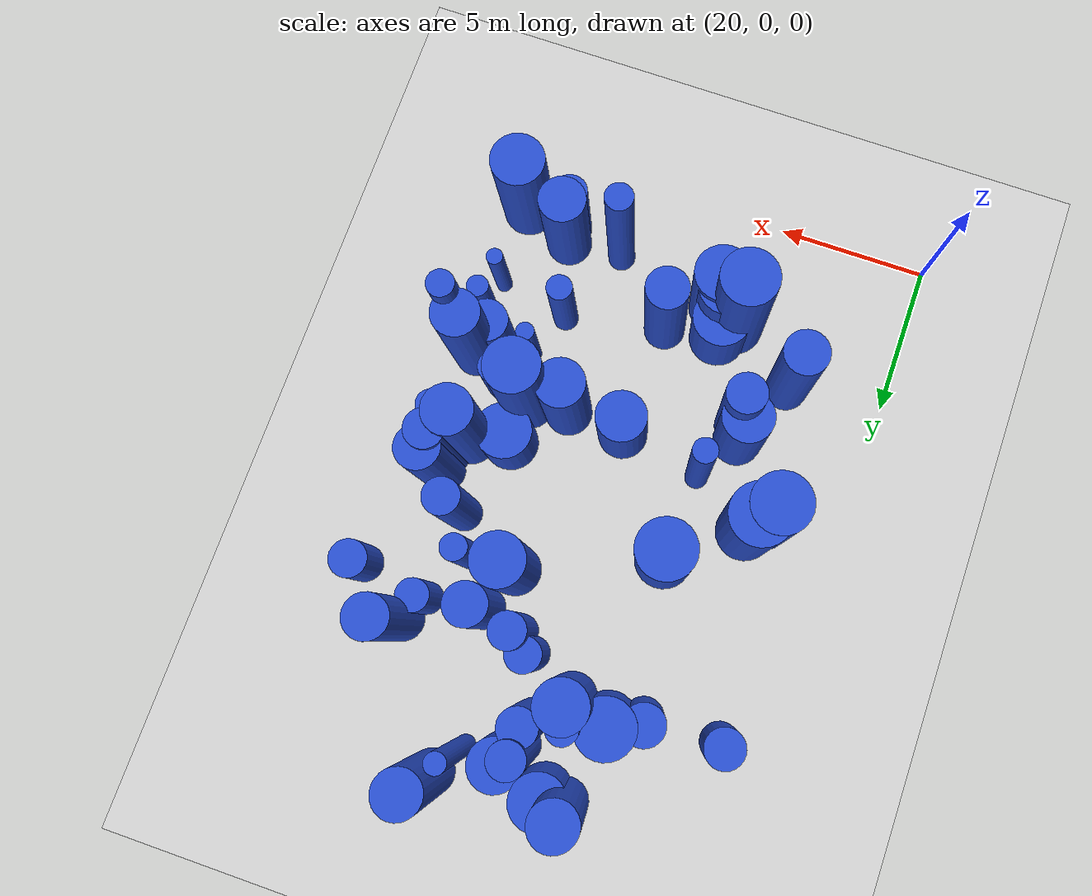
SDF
<sdf version="1.6">
 <world name="default">
  <model name="ground_plane">
   <static>1</static>
   <link name="link">
    <collision name="collision">
     <geometry><plane><normal>0 0 1</normal><size>100 100</size></plane></geometry>
     <surface><friction><ode><mu>100</mu><mu2>50</mu2></ode></friction></surface>
    </collision>
    <visual name="visual">
     <cast_shadows>0</cast_shadows>
     <geometry><plane><normal>0 0 1</normal><size>100 100</size></plane></geometry>
     <material>
      <script><uri>file://media/materials/scripts/gazebo.material</uri><name>Gazebo/Grey</name></script>
     </material>
    </visual>
   </link>
  </model>
  <model name="4">
   <static>0</static>
   <link name="link">
    <inertial>
     <mass>2</mass>
     <inertia><ixx>2.85473</ixx><ixy>0</ixy><ixz>0</ixz><iyy>2.85473</iyy><iyz>0</iyz><izz>0.620901</izz></inertia>
    </inertial>
    <collision name="collision">
     <geometry><cylinder><length>3.90714</length><radius>0.787973</radius></cylinder></geometry>
     <surface><contact><collide_without_contact>1</collide_without_contact></contact></surface>
    </collision>
    <visual name="visual">
     <geometry><cylinder><length>3.90714</length><radius>0.787973</radius></cylinder></geometry>
     <material>
      <script><uri>file://media/materials/scripts/gazebo.material</uri><name>Gazebo/Blue</name></script>
     </material>
    </visual>
    <gravity>0</gravity>
   </link>
   <pose>29.9206 8.51372 1.95357 0 -0 0</pose>
  </model>
  <model name="35">
   <static>0</static>
   <link name="link">
    <inertial>
     <mass>2</mass>
     <inertia><ixx>1.28734</ixx><ixy>0</ixy><ixz>0</ixz><iyy>1.28734</iyy><iyz>0</iyz><izz>0.926556</izz></inertia>
    </inertial>
    <collision name="collision">
     <geometry><cylinder><length>2.22359</length><radius>0.962578</radius></cylinder></geometry>
     <surface><contact><collide_without_contact>1</collide_without_contact></contact></surface>
    </collision>
    <visual name="visual">
     <geometry><cylinder><length>2.22359</length><radius>0.962578</radius></cylinder></geometry>
     <material>
      <script><uri>file://media/materials/scripts/gazebo.material</uri><name>Gazebo/Blue</name></script>
     </material>
    </visual>
    <gravity>0</gravity>
   </link>
   <pose>25.9919 4.41635 1.11179 0 -0 0</pose>
  </model>
  <model name="54">
   <static>0</static>
   <link name="link">
    <inertial>
     <mass>2</mass>
     <inertia><ixx>1.57607</ixx><ixy>0</ixy><ixz>0</ixz><iyy>1.57607</iyy><iyz>0</iyz><izz>0.179412</izz></inertia>
    </inertial>
    <collision name="collision">
     <geometry><cylinder><length>2.98633</length><radius>0.423571</radius></cylinder></geometry>
     <surface><contact><collide_without_contact>1</collide_without_contact></contact></surface>
    </collision>
    <visual name="visual">
     <geometry><cylinder><length>2.98633</length><radius>0.423571</radius></cylinder></geometry>
     <material>
      <script><uri>file://media/materials/scripts/gazebo.material</uri><name>Gazebo/Blue</name></script>
     </material>
    </visual>
    <gravity>0</gravity>
   </link>
   <pose>31.1213 5.4114 1.49317 0 -0 0</pose>
  </model>
  <model name="72">
   <static>0</static>
   <link name="link">
    <inertial>
     <mass>2</mass>
     <inertia><ixx>3.37373</ixx><ixy>0</ixy><ixz>0</ixz><iyy>3.37373</iyy><iyz>0</iyz><izz>0.599551</izz></inertia>
    </inertial>
    <collision name="collision">
     <geometry><cylinder><length>4.29461</length><radius>0.774307</radius></cylinder></geometry>
     <surface><contact><collide_without_contact>1</collide_without_contact></contact></surface>
    </collision>
    <visual name="visual">
     <geometry><cylinder><length>4.29461</length><radius>0.774307</radius></cylinder></geometry>
     <material>
      <script><uri>file://media/materials/scripts/gazebo.material</uri><name>Gazebo/Blue</name></script>
     </material>
    </visual>
    <gravity>0</gravity>
   </link>
   <pose>33.5461 7.57259 2.14731 0 -0 0</pose>
  </model>
  <model name="78">
   <static>0</static>
   <link name="link">
    <inertial>
     <mass>2</mass>
     <inertia><ixx>2.13726</ixx><ixy>0</ixy><ixz>0</ixz><iyy>2.13726</iyy><iyz>0</iyz><izz>0.219295</izz></inertia>
    </inertial>
    <collision name="collision">
     <geometry><cylinder><length>3.48793</length><radius>0.46829</radius></cylinder></geometry>
     <surface><contact><collide_without_contact>1</collide_without_contact></contact></surface>
    </collision>
    <visual name="visual">
     <geometry><cylinder><length>3.48793</length><radius>0.46829</radius></cylinder></geometry>
     <material>
      <script><uri>file://media/materials/scripts/gazebo.material</uri><name>Gazebo/Blue</name></script>
     </material>
    </visual>
    <gravity>0</gravity>
   </link>
   <pose>33.4722 10.2994 1.74397 0 -0 0</pose>
  </model>
  <model name="85">
   <static>0</static>
   <link name="link">
    <inertial>
     <mass>2</mass>
     <inertia>
      <ixx>1.04976</ixx>
      <ixy>0</ixy>
      <ixz>0</ixz>
      <iyy>1.04976</iyy>
      <iyz>0</iyz>
      <izz>0.0926647</izz>
     </inertia>
    </inertial>
    <collision name="collision">
     <geometry><cylinder><length>2.45369</length><radius>0.304409</radius></cylinder></geometry>
     <surface><contact><collide_without_contact>1</collide_without_contact></contact></surface>
    </collision>
    <visual name="visual">
     <geometry><cylinder><length>2.45369</length><radius>0.304409</radius></cylinder></geometry>
     <material>
      <script><uri>file://media/materials/scripts/gazebo.material</uri><name>Gazebo/Blue</name></script>
     </material>
    </visual>
    <gravity>0</gravity>
   </link>
   <pose>31.7715 6.96102 1.22685 0 -0 0</pose>
  </model>
  <model name="97">
   <static>0</static>
   <link name="link">
    <inertial>
     <mass>2</mass>
     <inertia><ixx>1.02493</ixx><ixy>0</ixy><ixz>0</ixz><iyy>1.02493</iyy><iyz>0</iyz><izz>0.288554</izz></inertia>
    </inertial>
    <collision name="collision">
     <geometry><cylinder><length>2.29868</length><radius>0.537172</radius></cylinder></geometry>
     <surface><contact><collide_without_contact>1</collide_without_contact></contact></surface>
    </collision>
    <visual name="visual">
     <geometry><cylinder><length>2.29868</length><radius>0.537172</radius></cylinder></geometry>
     <material>
      <script><uri>file://media/materials/scripts/gazebo.material</uri><name>Gazebo/Blue</name></script>
     </material>
    </visual>
    <gravity>0</gravity>
   </link>
   <pose>32.2275 15.8811 1.14934 0 -0 0</pose>
  </model>
  <model name="109">
   <static>0</static>
   <link name="link">
    <inertial>
     <mass>2</mass>
     <inertia><ixx>1.3731</ixx><ixy>0</ixy><ixz>0</ixz><iyy>1.3731</iyy><iyz>0</iyz><izz>0.503151</izz></inertia>
    </inertial>
    <collision name="collision">
     <geometry><cylinder><length>2.59406</length><radius>0.709332</radius></cylinder></geometry>
     <surface><contact><collide_without_contact>1</collide_without_contact></contact></surface>
    </collision>
    <visual name="visual">
     <geometry><cylinder><length>2.59406</length><radius>0.709332</radius></cylinder></geometry>
     <material>
      <script><uri>file://media/materials/scripts/gazebo.material</uri><name>Gazebo/Blue</name></script>
     </material>
    </visual>
    <gravity>0</gravity>
   </link>
   <pose>33.0318 7.0477 1.29703 0 -0 0</pose>
  </model>
  <model name="119">
   <static>0</static>
   <link name="link">
    <inertial>
     <mass>2</mass>
     <inertia><ixx>1.0452</ixx><ixy>0</ixy><ixz>0</ixz><iyy>1.0452</iyy><iyz>0</iyz><izz>0.0754433</izz></inertia>
    </inertial>
    <collision name="collision">
     <geometry><cylinder><length>2.45863</length><radius>0.274669</radius></cylinder></geometry>
     <surface><contact><collide_without_contact>1</collide_without_contact></contact></surface>
    </collision>
    <visual name="visual">
     <geometry><cylinder><length>2.45863</length><radius>0.274669</radius></cylinder></geometry>
     <material>
      <script><uri>file://media/materials/scripts/gazebo.material</uri><name>Gazebo/Blue</name></script>
     </material>
    </visual>
    <gravity>0</gravity>
   </link>
   <pose>33.5432 4.92379 1.22931 0 -0 0</pose>
  </model>
  <model name="124">
   <static>0</static>
   <link name="link">
    <inertial>
     <mass>2</mass>
     <inertia><ixx>3.6875</ixx><ixy>0</ixy><ixz>0</ixz><iyy>3.6875</iyy><iyz>0</iyz><izz>0.151865</izz></inertia>
    </inertial>
    <collision name="collision">
     <geometry><cylinder><length>4.65504</length><radius>0.389699</radius></cylinder></geometry>
     <surface><contact><collide_without_contact>1</collide_without_contact></contact></surface>
    </collision>
    <visual name="visual">
     <geometry><cylinder><length>4.65504</length><radius>0.389699</radius></cylinder></geometry>
     <material>
      <script><uri>file://media/materials/scripts/gazebo.material</uri><name>Gazebo/Blue</name></script>
     </material>
    </visual>
    <gravity>0</gravity>
   </link>
   <pose>25.1592 9.2284 2.32752 0 -0 0</pose>
  </model>
  <model name="132">
   <static>0</static>
   <link name="link">
    <inertial>
     <mass>2</mass>
     <inertia><ixx>3.47744</ixx><ixy>0</ixy><ixz>0</ixz><iyy>3.47744</iyy><iyz>0</iyz><izz>0.716025</izz></inertia>
    </inertial>
    <collision name="collision">
     <geometry><cylinder><length>4.32626</length><radius>0.846183</radius></cylinder></geometry>
     <surface><contact><collide_without_contact>1</collide_without_contact></contact></surface>
    </collision>
    <visual name="visual">
     <geometry><cylinder><length>4.32626</length><radius>0.846183</radius></cylinder></geometry>
     <material>
      <script><uri>file://media/materials/scripts/gazebo.material</uri><name>Gazebo/Blue</name></script>
     </material>
    </visual>
    <gravity>0</gravity>
   </link>
   <pose>29.8014 14.0881 2.16313 0 -0 0</pose>
  </model>
  <model name="134">
   <static>0</static>
   <link name="link">
    <inertial>
     <mass>2</mass>
     <inertia><ixx>3.83594</ixx><ixy>0</ixy><ixz>0</ixz><iyy>3.83594</iyy><iyz>0</iyz><izz>0.559969</izz></inertia>
    </inertial>
    <collision name="collision">
     <geometry><cylinder><length>4.61906</length><radius>0.748311</radius></cylinder></geometry>
     <surface><contact><collide_without_contact>1</collide_without_contact></contact></surface>
    </collision>
    <visual name="visual">
     <geometry><cylinder><length>4.61906</length><radius>0.748311</radius></cylinder></geometry>
     <material>
      <script><uri>file://media/materials/scripts/gazebo.material</uri><name>Gazebo/Blue</name></script>
     </material>
    </visual>
    <gravity>0</gravity>
   </link>
   <pose>30.1511 20.9742 2.30953 0 -0 0</pose>
  </model>
  <model name="137">
   <static>0</static>
   <link name="link">
    <inertial>
     <mass>2</mass>
     <inertia><ixx>3.57417</ixx><ixy>0</ixy><ixz>0</ixz><iyy>3.57417</iyy><iyz>0</iyz><izz>0.404861</izz></inertia>
    </inertial>
    <collision name="collision">
     <geometry><cylinder><length>4.49783</length><radius>0.636287</radius></cylinder></geometry>
     <surface><contact><collide_without_contact>1</collide_without_contact></contact></surface>
    </collision>
    <visual name="visual">
     <geometry><cylinder><length>4.49783</length><radius>0.636287</radius></cylinder></geometry>
     <material>
      <script><uri>file://media/materials/scripts/gazebo.material</uri><name>Gazebo/Blue</name></script>
     </material>
    </visual>
    <gravity>0</gravity>
   </link>
   <pose>24.5313 7.18181 2.24891 0 -0 0</pose>
  </model>
  <model name="146">
   <static>0</static>
   <link name="link">
    <inertial>
     <mass>2</mass>
     <inertia><ixx>4.0179</ixx><ixy>0</ixy><ixz>0</ixz><iyy>4.0179</iyy><iyz>0</iyz><izz>0.681055</izz></inertia>
    </inertial>
    <collision name="collision">
     <geometry><cylinder><length>4.69726</length><radius>0.82526</radius></cylinder></geometry>
     <surface><contact><collide_without_contact>1</collide_without_contact></contact></surface>
    </collision>
    <visual name="visual">
     <geometry><cylinder><length>4.69726</length><radius>0.82526</radius></cylinder></geometry>
     <material>
      <script><uri>file://media/materials/scripts/gazebo.material</uri><name>Gazebo/Blue</name></script>
     </material>
    </visual>
    <gravity>0</gravity>
   </link>
   <pose>26.6902 17.3442 2.34863 0 -0 0</pose>
  </model>
  <model name="148">
   <static>0</static>
   <link name="link">
    <inertial>
     <mass>2</mass>
     <inertia><ixx>4.08409</ixx><ixy>0</ixy><ixz>0</ixz><iyy>4.08409</iyy><iyz>0</iyz><izz>0.951518</izz></inertia>
    </inertial>
    <collision name="collision">
     <geometry><cylinder><length>4.65295</length><radius>0.975458</radius></cylinder></geometry>
     <surface><contact><collide_without_contact>1</collide_without_contact></contact></surface>
    </collision>
    <visual name="visual">
     <geometry><cylinder><length>4.65295</length><radius>0.975458</radius></cylinder></geometry>
     <material>
      <script><uri>file://media/materials/scripts/gazebo.material</uri><name>Gazebo/Blue</name></script>
     </material>
    </visual>
    <gravity>0</gravity>
   </link>
   <pose>23.0698 10.4532 2.32648 0 -0 0</pose>
  </model>
  <model name="155">
   <static>0</static>
   <link name="link">
    <inertial>
     <mass>2</mass>
     <inertia><ixx>2.94944</ixx><ixy>0</ixy><ixz>0</ixz><iyy>2.94944</iyy><iyz>0</iyz><izz>0.486165</izz></inertia>
    </inertial>
    <collision name="collision">
     <geometry><cylinder><length>4.02966</length><radius>0.697255</radius></cylinder></geometry>
     <surface><contact><collide_without_contact>1</collide_without_contact></contact></surface>
    </collision>
    <visual name="visual">
     <geometry><cylinder><length>4.02966</length><radius>0.697255</radius></cylinder></geometry>
     <material>
      <script><uri>file://media/materials/scripts/gazebo.material</uri><name>Gazebo/Blue</name></script>
     </material>
    </visual>
    <gravity>0</gravity>
   </link>
   <pose>27.8001 4.70758 2.01483 0 -0 0</pose>
  </model>
  <model name="158">
   <static>0</static>
   <link name="link">
    <inertial>
     <mass>2</mass>
     <inertia><ixx>4.07295</ixx><ixy>0</ixy><ixz>0</ixz><iyy>4.07295</iyy><iyz>0</iyz><izz>0.902413</izz></inertia>
    </inertial>
    <collision name="collision">
     <geometry><cylinder><length>4.66159</length><radius>0.949954</radius></cylinder></geometry>
     <surface><contact><collide_without_contact>1</collide_without_contact></contact></surface>
    </collision>
    <visual name="visual">
     <geometry><cylinder><length>4.66159</length><radius>0.949954</radius></cylinder></geometry>
     <material>
      <script><uri>file://media/materials/scripts/gazebo.material</uri><name>Gazebo/Blue</name></script>
     </material>
    </visual>
    <gravity>0</gravity>
   </link>
   <pose>22.6072 9.96097 2.3308 0 -0 0</pose>
  </model>
  <model name="171">
   <static>0</static>
   <link name="link">
    <inertial>
     <mass>2</mass>
     <inertia><ixx>2.06842</ixx><ixy>0</ixy><ixz>0</ixz><iyy>2.06842</iyy><iyz>0</iyz><izz>0.996957</izz></inertia>
    </inertial>
    <collision name="collision">
     <geometry><cylinder><length>3.06915</length><radius>0.998477</radius></cylinder></geometry>
     <surface><contact><collide_without_contact>1</collide_without_contact></contact></surface>
    </collision>
    <visual name="visual">
     <geometry><cylinder><length>3.06915</length><radius>0.998477</radius></cylinder></geometry>
     <material>
      <script><uri>file://media/materials/scripts/gazebo.material</uri><name>Gazebo/Blue</name></script>
     </material>
    </visual>
    <gravity>0</gravity>
   </link>
   <pose>26.0832 3.64066 1.53457 0 -0 0</pose>
  </model>
  <model name="182">
   <static>0</static>
   <link name="link">
    <inertial>
     <mass>2</mass>
     <inertia><ixx>3.01124</ixx><ixy>0</ixy><ixz>0</ixz><iyy>3.01124</iyy><iyz>0</iyz><izz>0.1755</izz></inertia>
    </inertial>
    <collision name="collision">
     <geometry><cylinder><length>4.18819</length><radius>0.418927</radius></cylinder></geometry>
     <surface><contact><collide_without_contact>1</collide_without_contact></contact></surface>
    </collision>
    <visual name="visual">
     <geometry><cylinder><length>4.18819</length><radius>0.418927</radius></cylinder></geometry>
     <material>
      <script><uri>file://media/materials/scripts/gazebo.material</uri><name>Gazebo/Blue</name></script>
     </material>
    </visual>
    <gravity>0</gravity>
   </link>
   <pose>31.1449 14.1519 2.0941 0 -0 0</pose>
  </model>
  <model name="188">
   <static>0</static>
   <link name="link">
    <inertial>
     <mass>2</mass>
     <inertia><ixx>3.7068</ixx><ixy>0</ixy><ixz>0</ixz><iyy>3.7068</iyy><iyz>0</iyz><izz>0.490801</izz></inertia>
    </inertial>
    <collision name="collision">
     <geometry><cylinder><length>4.55723</length><radius>0.700572</radius></cylinder></geometry>
     <surface><contact><collide_without_contact>1</collide_without_contact></contact></surface>
    </collision>
    <visual name="visual">
     <geometry><cylinder><length>4.55723</length><radius>0.700572</radius></cylinder></geometry>
     <material>
      <script><uri>file://media/materials/scripts/gazebo.material</uri><name>Gazebo/Blue</name></script>
     </material>
    </visual>
    <gravity>0</gravity>
   </link>
   <pose>32.7262 16.788 2.27862 0 -0 0</pose>
  </model>
  <model name="193">
   <static>0</static>
   <link name="link">
    <inertial>
     <mass>2</mass>
     <inertia>
      <ixx>0.866241</ixx>
      <ixy>0</ixy>
      <ixz>0</ixz>
      <iyy>0.866241</iyy>
      <iyz>0</iyz>
      <izz>0.378767</izz>
     </inertia>
    </inertial>
    <collision name="collision">
     <geometry><cylinder><length>2.01523</length><radius>0.615441</radius></cylinder></geometry>
     <surface><contact><collide_without_contact>1</collide_without_contact></contact></surface>
    </collision>
    <visual name="visual">
     <geometry><cylinder><length>2.01523</length><radius>0.615441</radius></cylinder></geometry>
     <material>
      <script><uri>file://media/materials/scripts/gazebo.material</uri><name>Gazebo/Blue</name></script>
     </material>
    </visual>
    <gravity>0</gravity>
   </link>
   <pose>34.5801 15.4727 1.00761 0 -0 0</pose>
  </model>
  <model name="206">
   <static>0</static>
   <link name="link">
    <inertial>
     <mass>2</mass>
     <inertia>
      <ixx>0.981413</ixx>
      <ixy>0</ixy>
      <ixz>0</ixz>
      <iyy>0.981413</iyy>
      <iyz>0</iyz>
      <izz>0.28462</izz>
     </inertia>
    </inertial>
    <collision name="collision">
     <geometry><cylinder><length>2.2438</length><radius>0.533498</radius></cylinder></geometry>
     <surface><contact><collide_without_contact>1</collide_without_contact></contact></surface>
    </collision>
    <visual name="visual">
     <geometry><cylinder><length>2.2438</length><radius>0.533498</radius></cylinder></geometry>
     <material>
      <script><uri>file://media/materials/scripts/gazebo.material</uri><name>Gazebo/Blue</name></script>
     </material>
    </visual>
    <gravity>0</gravity>
   </link>
   <pose>32.3544 8.29998 1.1219 0 -0 0</pose>
  </model>
  <model name="209">
   <static>0</static>
   <link name="link">
    <inertial>
     <mass>2</mass>
     <inertia><ixx>3.14662</ixx><ixy>0</ixy><ixz>0</ixz><iyy>3.14662</iyy><iyz>0</iyz><izz>0.116666</izz></inertia>
    </inertial>
    <collision name="collision">
     <geometry><cylinder><length>4.30462</length><radius>0.341565</radius></cylinder></geometry>
     <surface><contact><collide_without_contact>1</collide_without_contact></contact></surface>
    </collision>
    <visual name="visual">
     <geometry><cylinder><length>4.30462</length><radius>0.341565</radius></cylinder></geometry>
     <material>
      <script><uri>file://media/materials/scripts/gazebo.material</uri><name>Gazebo/Blue</name></script>
     </material>
    </visual>
    <gravity>0</gravity>
   </link>
   <pose>25.6871 3.76018 2.15231 0 -0 0</pose>
  </model>
  <model name="211">
   <static>0</static>
   <link name="link">
    <inertial>
     <mass>2</mass>
     <inertia><ixx>1.59118</ixx><ixy>0</ixy><ixz>0</ixz><iyy>1.59118</iyy><iyz>0</iyz><izz>0.330992</izz></inertia>
    </inertial>
    <collision name="collision">
     <geometry><cylinder><length>2.92474</length><radius>0.575319</radius></cylinder></geometry>
     <surface><contact><collide_without_contact>1</collide_without_contact></contact></surface>
    </collision>
    <visual name="visual">
     <geometry><cylinder><length>2.92474</length><radius>0.575319</radius></cylinder></geometry>
     <material>
      <script><uri>file://media/materials/scripts/gazebo.material</uri><name>Gazebo/Blue</name></script>
     </material>
    </visual>
    <gravity>0</gravity>
   </link>
   <pose>31.8902 2.25001 1.46237 0 -0 0</pose>
  </model>
  <model name="215">
   <static>0</static>
   <link name="link">
    <inertial>
     <mass>2</mass>
     <inertia><ixx>3.86896</ixx><ixy>0</ixy><ixz>0</ixz><iyy>3.86896</iyy><iyz>0</iyz><izz>0.110319</izz></inertia>
    </inertial>
    <collision name="collision">
     <geometry><cylinder><length>4.7836</length><radius>0.332143</radius></cylinder></geometry>
     <surface><contact><collide_without_contact>1</collide_without_contact></contact></surface>
    </collision>
    <visual name="visual">
     <geometry><cylinder><length>4.7836</length><radius>0.332143</radius></cylinder></geometry>
     <material>
      <script><uri>file://media/materials/scripts/gazebo.material</uri><name>Gazebo/Blue</name></script>
     </material>
    </visual>
    <gravity>0</gravity>
   </link>
   <pose>29.4248 19.8478 2.3918 0 -0 0</pose>
  </model>
  <model name="224">
   <static>0</static>
   <link name="link">
    <inertial>
     <mass>2</mass>
     <inertia><ixx>3.74563</ixx><ixy>0</ixy><ixz>0</ixz><iyy>3.74563</iyy><iyz>0</iyz><izz>0.642376</izz></inertia>
    </inertial>
    <collision name="collision">
     <geometry><cylinder><length>4.53284</length><radius>0.801483</radius></cylinder></geometry>
     <surface><contact><collide_without_contact>1</collide_without_contact></contact></surface>
    </collision>
    <visual name="visual">
     <geometry><cylinder><length>4.53284</length><radius>0.801483</radius></cylinder></geometry>
     <material>
      <script><uri>file://media/materials/scripts/gazebo.material</uri><name>Gazebo/Blue</name></script>
     </material>
    </visual>
    <gravity>0</gravity>
   </link>
   <pose>32.6685 10.4652 2.26642 0 -0 0</pose>
  </model>
  <model name="227">
   <static>0</static>
   <link name="link">
    <inertial>
     <mass>2</mass>
     <inertia><ixx>3.09174</ixx><ixy>0</ixy><ixz>0</ixz><iyy>3.09174</iyy><iyz>0</iyz><izz>0.922081</izz></inertia>
    </inertial>
    <collision name="collision">
     <geometry><cylinder><length>3.97293</length><radius>0.960251</radius></cylinder></geometry>
     <surface><contact><collide_without_contact>1</collide_without_contact></contact></surface>
    </collision>
    <visual name="visual">
     <geometry><cylinder><length>3.97293</length><radius>0.960251</radius></cylinder></geometry>
     <material>
      <script><uri>file://media/materials/scripts/gazebo.material</uri><name>Gazebo/Blue</name></script>
     </material>
    </visual>
    <gravity>0</gravity>
   </link>
   <pose>25.3181 12.2082 1.98646 0 -0 0</pose>
  </model>
  <model name="249">
   <static>0</static>
   <link name="link">
    <inertial>
     <mass>2</mass>
     <inertia><ixx>2.81614</ixx><ixy>0</ixy><ixz>0</ixz><iyy>2.81614</iyy><iyz>0</iyz><izz>0.242939</izz></inertia>
    </inertial>
    <collision name="collision">
     <geometry><cylinder><length>4.02094</length><radius>0.492889</radius></cylinder></geometry>
     <surface><contact><collide_without_contact>1</collide_without_contact></contact></surface>
    </collision>
    <visual name="visual">
     <geometry><cylinder><length>4.02094</length><radius>0.492889</radius></cylinder></geometry>
     <material>
      <script><uri>file://media/materials/scripts/gazebo.material</uri><name>Gazebo/Blue</name></script>
     </material>
    </visual>
    <gravity>0</gravity>
   </link>
   <pose>26.4957 17.971 2.01047 0 -0 0</pose>
  </model>
  <model name="252">
   <static>0</static>
   <link name="link">
    <inertial>
     <mass>2</mass>
     <inertia><ixx>2.94454</ixx><ixy>0</ixy><ixz>0</ixz><iyy>2.94454</iyy><iyz>0</iyz><izz>0.339974</izz></inertia>
    </inertial>
    <collision name="collision">
     <geometry><cylinder><length>4.08011</length><radius>0.583073</radius></cylinder></geometry>
     <surface><contact><collide_without_contact>1</collide_without_contact></contact></surface>
    </collision>
    <visual name="visual">
     <geometry><cylinder><length>4.08011</length><radius>0.583073</radius></cylinder></geometry>
     <material>
      <script><uri>file://media/materials/scripts/gazebo.material</uri><name>Gazebo/Blue</name></script>
     </material>
    </visual>
    <gravity>0</gravity>
   </link>
   <pose>32.042 12.8726 2.04006 0 -0 0</pose>
  </model>
  <model name="264">
   <static>0</static>
   <link name="link">
    <inertial>
     <mass>2</mass>
     <inertia><ixx>3.3894</ixx><ixy>0</ixy><ixz>0</ixz><iyy>3.3894</iyy><iyz>0</iyz><izz>0.514223</izz></inertia>
    </inertial>
    <collision name="collision">
     <geometry><cylinder><length>4.33517</length><radius>0.717093</radius></cylinder></geometry>
     <surface><contact><collide_without_contact>1</collide_without_contact></contact></surface>
    </collision>
    <visual name="visual">
     <geometry><cylinder><length>4.33517</length><radius>0.717093</radius></cylinder></geometry>
     <material>
      <script><uri>file://media/materials/scripts/gazebo.material</uri><name>Gazebo/Blue</name></script>
     </material>
    </visual>
    <gravity>0</gravity>
   </link>
   <pose>23.2285 5.38734 2.16759 0 -0 0</pose>
  </model>
  <model name="279">
   <static>0</static>
   <link name="link">
    <inertial>
     <mass>2</mass>
     <inertia><ixx>1.10862</ixx><ixy>0</ixy><ixz>0</ixz><iyy>1.10862</iyy><iyz>0</iyz><izz>0.836783</izz></inertia>
    </inertial>
    <collision name="collision">
     <geometry><cylinder><length>2.03504</length><radius>0.914758</radius></cylinder></geometry>
     <surface><contact><collide_without_contact>1</collide_without_contact></contact></surface>
    </collision>
    <visual name="visual">
     <geometry><cylinder><length>2.03504</length><radius>0.914758</radius></cylinder></geometry>
     <material>
      <script><uri>file://media/materials/scripts/gazebo.material</uri><name>Gazebo/Blue</name></script>
     </material>
    </visual>
    <gravity>0</gravity>
   </link>
   <pose>31.4031 10.1282 1.01752 0 -0 0</pose>
  </model>
  <model name="287">
   <static>0</static>
   <link name="link">
    <inertial>
     <mass>2</mass>
     <inertia><ixx>2.34498</ixx><ixy>0</ixy><ixz>0</ixz><iyy>2.34498</iyy><iyz>0</iyz><izz>0.593776</izz></inertia>
    </inertial>
    <collision name="collision">
     <geometry><cylinder><length>3.50551</length><radius>0.770568</radius></cylinder></geometry>
     <surface><contact><collide_without_contact>1</collide_without_contact></contact></surface>
    </collision>
    <visual name="visual">
     <geometry><cylinder><length>3.50551</length><radius>0.770568</radius></cylinder></geometry>
     <material>
      <script><uri>file://media/materials/scripts/gazebo.material</uri><name>Gazebo/Blue</name></script>
     </material>
    </visual>
    <gravity>0</gravity>
   </link>
   <pose>31.903 2.82789 1.75275 0 -0 0</pose>
  </model>
  <model name="299">
   <static>0</static>
   <link name="link">
    <inertial>
     <mass>2</mass>
     <inertia><ixx>2.04138</ixx><ixy>0</ixy><ixz>0</ixz><iyy>2.04138</iyy><iyz>0</iyz><izz>0.352481</izz></inertia>
    </inertial>
    <collision name="collision">
     <geometry><cylinder><length>3.34527</length><radius>0.593701</radius></cylinder></geometry>
     <surface><contact><collide_without_contact>1</collide_without_contact></contact></surface>
    </collision>
    <visual name="visual">
     <geometry><cylinder><length>3.34527</length><radius>0.593701</radius></cylinder></geometry>
     <material>
      <script><uri>file://media/materials/scripts/gazebo.material</uri><name>Gazebo/Blue</name></script>
     </material>
    </visual>
    <gravity>0</gravity>
   </link>
   <pose>28.9807 15.9187 1.67263 0 -0 0</pose>
  </model>
  <model name="311">
   <static>0</static>
   <link name="link">
    <inertial>
     <mass>2</mass>
     <inertia><ixx>3.16803</ixx><ixy>0</ixy><ixz>0</ixz><iyy>3.16803</iyy><iyz>0</iyz><izz>0.506831</izz></inertia>
    </inertial>
    <collision name="collision">
     <geometry><cylinder><length>4.18183</length><radius>0.711921</radius></cylinder></geometry>
     <surface><contact><collide_without_contact>1</collide_without_contact></contact></surface>
    </collision>
    <visual name="visual">
     <geometry><cylinder><length>4.18183</length><radius>0.711921</radius></cylinder></geometry>
     <material>
      <script><uri>file://media/materials/scripts/gazebo.material</uri><name>Gazebo/Blue</name></script>
     </material>
    </visual>
    <gravity>0</gravity>
   </link>
   <pose>33.1954 11.7422 2.09091 0 -0 0</pose>
  </model>
  <model name="320">
   <static>0</static>
   <link name="link">
    <inertial>
     <mass>2</mass>
     <inertia><ixx>1.4739</ixx><ixy>0</ixy><ixz>0</ixz><iyy>1.4739</iyy><iyz>0</iyz><izz>0.331839</izz></inertia>
    </inertial>
    <collision name="collision">
     <geometry><cylinder><length>2.8014</length><radius>0.576055</radius></cylinder></geometry>
     <surface><contact><collide_without_contact>1</collide_without_contact></contact></surface>
    </collision>
    <visual name="visual">
     <geometry><cylinder><length>2.8014</length><radius>0.576055</radius></cylinder></geometry>
     <material>
      <script><uri>file://media/materials/scripts/gazebo.material</uri><name>Gazebo/Blue</name></script>
     </material>
    </visual>
    <gravity>0</gravity>
   </link>
   <pose>28.3636 16.446 1.4007 0 -0 0</pose>
  </model>
  <model name="325">
   <static>0</static>
   <link name="link">
    <inertial>
     <mass>2</mass>
     <inertia><ixx>1.62016</ixx><ixy>0</ixy><ixz>0</ixz><iyy>1.62016</iyy><iyz>0</iyz><izz>0.683666</izz></inertia>
    </inertial>
    <collision name="collision">
     <geometry><cylinder><length>2.76947</length><radius>0.826841</radius></cylinder></geometry>
     <surface><contact><collide_without_contact>1</collide_without_contact></contact></surface>
    </collision>
    <visual name="visual">
     <geometry><cylinder><length>2.76947</length><radius>0.826841</radius></cylinder></geometry>
     <material>
      <script><uri>file://media/materials/scripts/gazebo.material</uri><name>Gazebo/Blue</name></script>
     </material>
    </visual>
    <gravity>0</gravity>
   </link>
   <pose>27.9556 8.64553 1.38473 0 -0 0</pose>
  </model>
  <model name="330">
   <static>0</static>
   <link name="link">
    <inertial>
     <mass>2</mass>
     <inertia><ixx>2.09814</ixx><ixy>0</ixy><ixz>0</ixz><iyy>2.09814</iyy><iyz>0</iyz><izz>0.910541</izz></inertia>
    </inertial>
    <collision name="collision">
     <geometry><cylinder><length>3.13962</length><radius>0.954223</radius></cylinder></geometry>
     <surface><contact><collide_without_contact>1</collide_without_contact></contact></surface>
    </collision>
    <visual name="visual">
     <geometry><cylinder><length>3.13962</length><radius>0.954223</radius></cylinder></geometry>
     <material>
      <script><uri>file://media/materials/scripts/gazebo.material</uri><name>Gazebo/Blue</name></script>
     </material>
    </visual>
    <gravity>0</gravity>
   </link>
   <pose>25.3504 17.6547 1.56981 0 -0 0</pose>
  </model>
  <model name="334">
   <static>0</static>
   <link name="link">
    <inertial>
     <mass>2</mass>
     <inertia><ixx>2.86246</ixx><ixy>0</ixy><ixz>0</ixz><iyy>2.86246</iyy><iyz>0</iyz><izz>0.379122</izz></inertia>
    </inertial>
    <collision name="collision">
     <geometry><cylinder><length>4.00467</length><radius>0.615729</radius></cylinder></geometry>
     <surface><contact><collide_without_contact>1</collide_without_contact></contact></surface>
    </collision>
    <visual name="visual">
     <geometry><cylinder><length>4.00467</length><radius>0.615729</radius></cylinder></geometry>
     <material>
      <script><uri>file://media/materials/scripts/gazebo.material</uri><name>Gazebo/Blue</name></script>
     </material>
    </visual>
    <gravity>0</gravity>
   </link>
   <pose>27.6977 18.347 2.00234 0 -0 0</pose>
  </model>
  <model name="336">
   <static>0</static>
   <link name="link">
    <inertial>
     <mass>2</mass>
     <inertia><ixx>3.14117</ixx><ixy>0</ixy><ixz>0</ixz><iyy>3.14117</iyy><iyz>0</iyz><izz>0.342409</izz></inertia>
    </inertial>
    <collision name="collision">
     <geometry><cylinder><length>4.22135</length><radius>0.585157</radius></cylinder></geometry>
     <surface><contact><collide_without_contact>1</collide_without_contact></contact></surface>
    </collision>
    <visual name="visual">
     <geometry><cylinder><length>4.22135</length><radius>0.585157</radius></cylinder></geometry>
     <material>
      <script><uri>file://media/materials/scripts/gazebo.material</uri><name>Gazebo/Blue</name></script>
     </material>
    </visual>
    <gravity>0</gravity>
   </link>
   <pose>27.6771 19.2488 2.11068 0 -0 0</pose>
  </model>
  <model name="348">
   <static>0</static>
   <link name="link">
    <inertial>
     <mass>2</mass>
     <inertia><ixx>1.09387</ixx><ixy>0</ixy><ixz>0</ixz><iyy>1.09387</iyy><iyz>0</iyz><izz>0.730361</izz></inertia>
    </inertial>
    <collision name="collision">
     <geometry><cylinder><length>2.09097</length><radius>0.854611</radius></cylinder></geometry>
     <surface><contact><collide_without_contact>1</collide_without_contact></contact></surface>
    </collision>
    <visual name="visual">
     <geometry><cylinder><length>2.09097</length><radius>0.854611</radius></cylinder></geometry>
     <material>
      <script><uri>file://media/materials/scripts/gazebo.material</uri><name>Gazebo/Blue</name></script>
     </material>
    </visual>
    <gravity>0</gravity>
   </link>
   <pose>28.1455 19.8235 1.04549 0 -0 0</pose>
  </model>
  <model name="350">
   <static>0</static>
   <link name="link">
    <inertial>
     <mass>2</mass>
     <inertia>
      <ixx>0.956007</ixx>
      <ixy>0</ixy>
      <ixz>0</ixz>
      <iyy>0.956007</iyy>
      <iyz>0</iyz>
      <izz>0.428616</izz>
     </inertia>
    </inertial>
    <collision name="collision">
     <geometry><cylinder><length>2.10955</length><radius>0.654688</radius></cylinder></geometry>
     <surface><contact><collide_without_contact>1</collide_without_contact></contact></surface>
    </collision>
    <visual name="visual">
     <geometry><cylinder><length>2.10955</length><radius>0.654688</radius></cylinder></geometry>
     <material>
      <script><uri>file://media/materials/scripts/gazebo.material</uri><name>Gazebo/Blue</name></script>
     </material>
    </visual>
    <gravity>0</gravity>
   </link>
   <pose>21.7622 17.1497 1.05477 0 -0 0</pose>
  </model>
  <model name="380">
   <static>0</static>
   <link name="link">
    <inertial>
     <mass>2</mass>
     <inertia><ixx>3.81783</ixx><ixy>0</ixy><ixz>0</ixz><iyy>3.81783</iyy><iyz>0</iyz><izz>0.211033</izz></inertia>
    </inertial>
    <collision name="collision">
     <geometry><cylinder><length>4.71952</length><radius>0.459383</radius></cylinder></geometry>
     <surface><contact><collide_without_contact>1</collide_without_contact></contact></surface>
    </collision>
    <visual name="visual">
     <geometry><cylinder><length>4.71952</length><radius>0.459383</radius></cylinder></geometry>
     <material>
      <script><uri>file://media/materials/scripts/gazebo.material</uri><name>Gazebo/Blue</name></script>
     </material>
    </visual>
    <gravity>0</gravity>
   </link>
   <pose>30.0223 2.72217 2.35976 0 -0 0</pose>
  </model>
  <model name="389">
   <static>0</static>
   <link name="link">
    <inertial>
     <mass>2</mass>
     <inertia><ixx>4.04971</ixx><ixy>0</ixy><ixz>0</ixz><iyy>4.04971</iyy><iyz>0</iyz><izz>0.194326</izz></inertia>
    </inertial>
    <collision name="collision">
     <geometry><cylinder><length>4.86983</length><radius>0.440824</radius></cylinder></geometry>
     <surface><contact><collide_without_contact>1</collide_without_contact></contact></surface>
    </collision>
    <visual name="visual">
     <geometry><cylinder><length>4.86983</length><radius>0.440824</radius></cylinder></geometry>
     <material>
      <script><uri>file://media/materials/scripts/gazebo.material</uri><name>Gazebo/Blue</name></script>
     </material>
    </visual>
    <gravity>0</gravity>
   </link>
   <pose>34.0961 7.02951 2.43492 0 -0 0</pose>
  </model>
  <model name="395">
   <static>0</static>
   <link name="link">
    <inertial>
     <mass>2</mass>
     <inertia><ixx>2.64764</ixx><ixy>0</ixy><ixz>0</ixz><iyy>2.64764</iyy><iyz>0</iyz><izz>0.675936</izz></inertia>
    </inertial>
    <collision name="collision">
     <geometry><cylinder><length>3.72264</length><radius>0.822153</radius></cylinder></geometry>
     <surface><contact><collide_without_contact>1</collide_without_contact></contact></surface>
    </collision>
    <visual name="visual">
     <geometry><cylinder><length>3.72264</length><radius>0.822153</radius></cylinder></geometry>
     <material>
      <script><uri>file://media/materials/scripts/gazebo.material</uri><name>Gazebo/Blue</name></script>
     </material>
    </visual>
    <gravity>0</gravity>
   </link>
   <pose>24.2521 7.6345 1.86132 0 -0 0</pose>
  </model>
  <model name="398">
   <static>0</static>
   <link name="link">
    <inertial>
     <mass>2</mass>
     <inertia><ixx>4.25835</ixx><ixy>0</ixy><ixz>0</ixz><iyy>4.25835</iyy><iyz>0</iyz><izz>0.855851</izz></inertia>
    </inertial>
    <collision name="collision">
     <geometry><cylinder><length>4.79401</length><radius>0.925122</radius></cylinder></geometry>
     <surface><contact><collide_without_contact>1</collide_without_contact></contact></surface>
    </collision>
    <visual name="visual">
     <geometry><cylinder><length>4.79401</length><radius>0.925122</radius></cylinder></geometry>
     <material>
      <script><uri>file://media/materials/scripts/gazebo.material</uri><name>Gazebo/Blue</name></script>
     </material>
    </visual>
    <gravity>0</gravity>
   </link>
   <pose>25.5238 3.87477 2.39701 0 -0 0</pose>
  </model>
  <model name="399">
   <static>0</static>
   <link name="link">
    <inertial>
     <mass>2</mass>
     <inertia><ixx>3.08676</ixx><ixy>0</ixy><ixz>0</ixz><iyy>3.08676</iyy><iyz>0</iyz><izz>0.203108</izz></inertia>
    </inertial>
    <collision name="collision">
     <geometry><cylinder><length>4.23217</length><radius>0.450676</radius></cylinder></geometry>
     <surface><contact><collide_without_contact>1</collide_without_contact></contact></surface>
    </collision>
    <visual name="visual">
     <geometry><cylinder><length>4.23217</length><radius>0.450676</radius></cylinder></geometry>
     <material>
      <script><uri>file://media/materials/scripts/gazebo.material</uri><name>Gazebo/Blue</name></script>
     </material>
    </visual>
    <gravity>0</gravity>
   </link>
   <pose>26.5017 17.0273 2.11608 0 -0 0</pose>
  </model>
  <model name="426">
   <static>0</static>
   <link name="link">
    <inertial>
     <mass>2</mass>
     <inertia><ixx>2.22942</ixx><ixy>0</ixy><ixz>0</ixz><iyy>2.22942</iyy><iyz>0</iyz><izz>0.861934</izz></inertia>
    </inertial>
    <collision name="collision">
     <geometry><cylinder><length>3.28493</length><radius>0.928404</radius></cylinder></geometry>
     <surface><contact><collide_without_contact>1</collide_without_contact></contact></surface>
    </collision>
    <visual name="visual">
     <geometry><cylinder><length>3.28493</length><radius>0.928404</radius></cylinder></geometry>
     <material>
      <script><uri>file://media/materials/scripts/gazebo.material</uri><name>Gazebo/Blue</name></script>
     </material>
    </visual>
    <gravity>0</gravity>
   </link>
   <pose>26.3687 3.40915 1.64246 0 -0 0</pose>
  </model>
  <model name="429">
   <static>0</static>
   <link name="link">
    <inertial>
     <mass>2</mass>
     <inertia><ixx>2.65307</ixx><ixy>0</ixy><ixz>0</ixz><iyy>2.65307</iyy><iyz>0</iyz><izz>0.477368</izz></inertia>
    </inertial>
    <collision name="collision">
     <geometry><cylinder><length>3.80609</length><radius>0.690918</radius></cylinder></geometry>
     <surface><contact><collide_without_contact>1</collide_without_contact></contact></surface>
    </collision>
    <visual name="visual">
     <geometry><cylinder><length>3.80609</length><radius>0.690918</radius></cylinder></geometry>
     <material>
      <script><uri>file://media/materials/scripts/gazebo.material</uri><name>Gazebo/Blue</name></script>
     </material>
    </visual>
    <gravity>0</gravity>
   </link>
   <pose>30.333 15.5842 1.90305 0 -0 0</pose>
  </model>
  <model name="433">
   <static>0</static>
   <link name="link">
    <inertial>
     <mass>2</mass>
     <inertia><ixx>1.35008</ixx><ixy>0</ixy><ixz>0</ixz><iyy>1.35008</iyy><iyz>0</iyz><izz>0.128271</izz></inertia>
    </inertial>
    <collision name="collision">
     <geometry><cylinder><length>2.77771</length><radius>0.35815</radius></cylinder></geometry>
     <surface><contact><collide_without_contact>1</collide_without_contact></contact></surface>
    </collision>
    <visual name="visual">
     <geometry><cylinder><length>2.77771</length><radius>0.35815</radius></cylinder></geometry>
     <material>
      <script><uri>file://media/materials/scripts/gazebo.material</uri><name>Gazebo/Blue</name></script>
     </material>
    </visual>
    <gravity>0</gravity>
   </link>
   <pose>33.6271 6.12201 1.38886 0 -0 0</pose>
  </model>
  <model name="443">
   <static>0</static>
   <link name="link">
    <inertial>
     <mass>2</mass>
     <inertia><ixx>2.69637</ixx><ixy>0</ixy><ixz>0</ixz><iyy>2.69637</iyy><iyz>0</iyz><izz>0.781853</izz></inertia>
    </inertial>
    <collision name="collision">
     <geometry><cylinder><length>3.71923</length><radius>0.884225</radius></cylinder></geometry>
     <surface><contact><collide_without_contact>1</collide_without_contact></contact></surface>
    </collision>
    <visual name="visual">
     <geometry><cylinder><length>3.71923</length><radius>0.884225</radius></cylinder></geometry>
     <material>
      <script><uri>file://media/materials/scripts/gazebo.material</uri><name>Gazebo/Blue</name></script>
     </material>
    </visual>
    <gravity>0</gravity>
   </link>
   <pose>33.6155 2.12064 1.85962 0 -0 0</pose>
  </model>
  <model name="447">
   <static>0</static>
   <link name="link">
    <inertial>
     <mass>2</mass>
     <inertia><ixx>4.09982</ixx><ixy>0</ixy><ixz>0</ixz><iyy>4.09982</iyy><iyz>0</iyz><izz>0.778602</izz></inertia>
    </inertial>
    <collision name="collision">
     <geometry><cylinder><length>4.71838</length><radius>0.882384</radius></cylinder></geometry>
     <surface><contact><collide_without_contact>1</collide_without_contact></contact></surface>
    </collision>
    <visual name="visual">
     <geometry><cylinder><length>4.71838</length><radius>0.882384</radius></cylinder></geometry>
     <material>
      <script><uri>file://media/materials/scripts/gazebo.material</uri><name>Gazebo/Blue</name></script>
     </material>
    </visual>
    <gravity>0</gravity>
   </link>
   <pose>31.3045 8.64619 2.35919 0 -0 0</pose>
  </model>
  <model name="452">
   <static>0</static>
   <link name="link">
    <inertial>
     <mass>2</mass>
     <inertia><ixx>1.36254</ixx><ixy>0</ixy><ixz>0</ixz><iyy>1.36254</iyy><iyz>0</iyz><izz>0.806202</izz></inertia>
    </inertial>
    <collision name="collision">
     <geometry><cylinder><length>2.3993</length><radius>0.897888</radius></cylinder></geometry>
     <surface><contact><collide_without_contact>1</collide_without_contact></contact></surface>
    </collision>
    <visual name="visual">
     <geometry><cylinder><length>2.3993</length><radius>0.897888</radius></cylinder></geometry>
     <material>
      <script><uri>file://media/materials/scripts/gazebo.material</uri><name>Gazebo/Blue</name></script>
     </material>
    </visual>
    <gravity>0</gravity>
   </link>
   <pose>26.5473 20.3569 1.19965 0 -0 0</pose>
  </model>
  <model name="459">
   <static>0</static>
   <link name="link">
    <inertial>
     <mass>2</mass>
     <inertia><ixx>1.77746</ixx><ixy>0</ixy><ixz>0</ixz><iyy>1.77746</iyy><iyz>0</iyz><izz>0.442987</izz></inertia>
    </inertial>
    <collision name="collision">
     <geometry><cylinder><length>3.05546</length><radius>0.665573</radius></cylinder></geometry>
     <surface><contact><collide_without_contact>1</collide_without_contact></contact></surface>
    </collision>
    <visual name="visual">
     <geometry><cylinder><length>3.05546</length><radius>0.665573</radius></cylinder></geometry>
     <material>
      <script><uri>file://media/materials/scripts/gazebo.material</uri><name>Gazebo/Blue</name></script>
     </material>
    </visual>
    <gravity>0</gravity>
   </link>
   <pose>24.3063 17.2001 1.52773 0 -0 0</pose>
  </model>
  <model name="462">
   <static>0</static>
   <link name="link">
    <inertial>
     <mass>2</mass>
     <inertia><ixx>3.33354</ixx><ixy>0</ixy><ixz>0</ixz><iyy>3.33354</iyy><iyz>0</iyz><izz>0.592874</izz></inertia>
    </inertial>
    <collision name="collision">
     <geometry><cylinder><length>4.26879</length><radius>0.769983</radius></cylinder></geometry>
     <surface><contact><collide_without_contact>1</collide_without_contact></contact></surface>
    </collision>
    <visual name="visual">
     <geometry><cylinder><length>4.26879</length><radius>0.769983</radius></cylinder></geometry>
     <material>
      <script><uri>file://media/materials/scripts/gazebo.material</uri><name>Gazebo/Blue</name></script>
     </material>
    </visual>
    <gravity>0</gravity>
   </link>
   <pose>25.848 20.461 2.1344 0 -0 0</pose>
  </model>
  <model name="487">
   <static>0</static>
   <link name="link">
    <inertial>
     <mass>2</mass>
     <inertia><ixx>3.34967</ixx><ixy>0</ixy><ixz>0</ixz><iyy>3.34967</iyy><iyz>0</iyz><izz>0.397948</izz></inertia>
    </inertial>
    <collision name="collision">
     <geometry><cylinder><length>4.34789</length><radius>0.630831</radius></cylinder></geometry>
     <surface><contact><collide_without_contact>1</collide_without_contact></contact></surface>
    </collision>
    <visual name="visual">
     <geometry><cylinder><length>4.34789</length><radius>0.630831</radius></cylinder></geometry>
     <material>
      <script><uri>file://media/materials/scripts/gazebo.material</uri><name>Gazebo/Blue</name></script>
     </material>
    </visual>
    <gravity>0</gravity>
   </link>
   <pose>33.1577 11.1824 2.17395 0 -0 0</pose>
  </model>
 </world>
</sdf>
